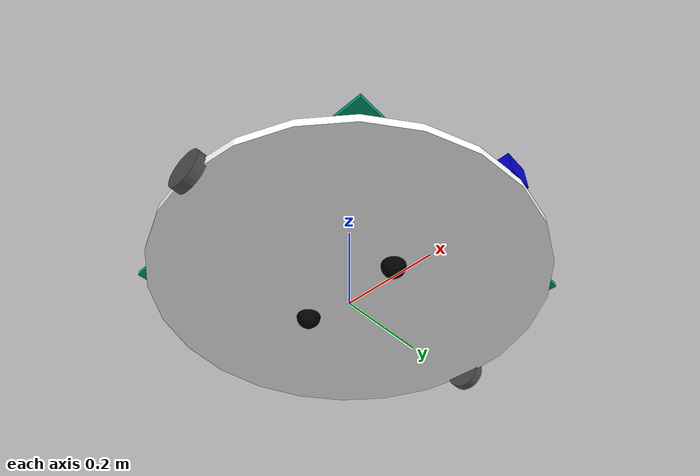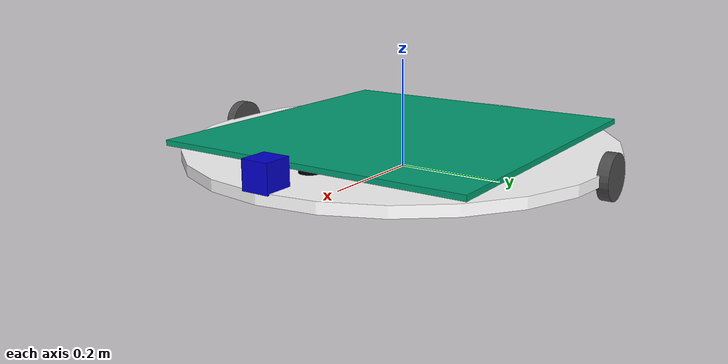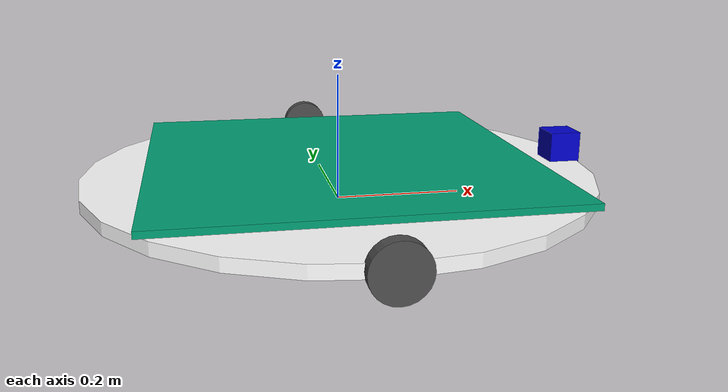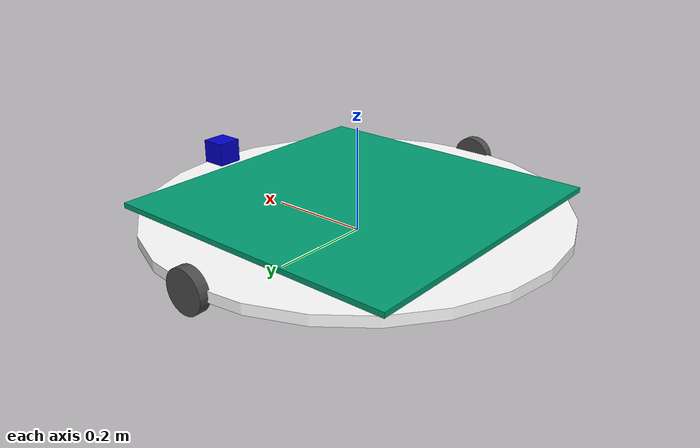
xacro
<?xml version="1.0"?>
<robot name="differential_wheeled_robot" xmlns:xacro="http://www.ros.org/wiki/xacro">

  <xacro:include filename="$(find prometheus_gazebo)/models/diff_robot/urdf/wheel.urdf.xacro" />

<!-- Defining the colors used in this robot -->
  <material name="Black">
    <color rgba="0.0 0.0 0.0 1.0"/>
  </material>

  <material name="Red">
    <color rgba="0.8 0.0 0.0 1.0"/>
  </material>

  <material name="White">
    <color rgba="1.0 1.0 1.0 1.0"/>
  </material>

  <material name="Blue">
    <color rgba="0.0 0.0 0.8 1.0"/>
  </material>

  <!-- xacro:PROPERTY LIST -->
  <!--All units in m-kg-s-radians unit system -->
  <xacro:property name="M_PI" value="3.1415926535897931" />
  <xacro:property name="M_PI_2" value="1.570796327" />
  <xacro:property name="DEG_TO_RAD" value="0.017453293" />

  <!-- Main body radius and height -->
  <!-- Main Body Cylinder base   -->
  <!-- root1 modifies -->
  <xacro:property name="base_height" value="0.02" />
  <!--xacro:property name="base_radius" value="0.15" /-->
  <xacro:property name="base_radius" value="0.4" />
  <xacro:property name="base_mass" value="5" /> <!-- in kg-->

  <!-- root1 adds support -->
    <!-- root1 changes for the experiments -->
    <!--xacro:property name="support_length" value="0.42" /-->
    <xacro:property name="support_length" value="0.01" />
    <xacro:property name="support_radius" value="0.02" />
    <xacro:property name="support_x" value="0.0" />
    <xacro:property name="support_y" value="0.0" />
    <xacro:property name="support_z" value="${base_height / 2 + support_length / 2}" />
    <xacro:property name="support_m" value="0.02" />

    <xacro:property name="support_x1" value="0.27" />
    <xacro:property name="support_y1" value="0.00" />
    <xacro:property name="support_x2" value="-0.135" />
    <xacro:property name="support_y2" value="-0.2338269" />
    <xacro:property name="support_x3" value="-0.135" />
    <xacro:property name="support_y3" value="0.2338269" />

  <!-- root1 adds landing pad -->
  <xacro:property name="pad_h" value="0.01" />
  <xacro:property name="pad_z" value="${support_length / 2 + pad_h / 2}" />

  <!-- caster wheel radius and height -->
  <!-- caster wheel mass -->
  <xacro:property name="caster_f_height" value="0.04" />
  <xacro:property name="caster_f_radius" value="0.025" />
  <xacro:property name="caster_f_mass" value="0.5" /> <!-- in kg-->

  <!-- caster wheel radius and height -->
  <!-- caster wheel mass -->
  <xacro:property name="caster_b_height" value="0.04" />
  <xacro:property name="caster_b_radius" value="0.025" />
  <xacro:property name="caster_b_mass" value="0.5" /> <!-- in kg-->

  <!-- Wheels -->

  <xacro:property name="wheel_mass" value="2.5" /> --> <!-- in kg-->

  <!-- root1 modifies -->
  <!--xacro:property name="base_x_origin_to_wheel_origin" value="0.25" /-->
  <!--xacro:property name="base_y_origin_to_wheel_origin" value="0.3" /-->
  <xacro:property name="base_x_origin_to_wheel_origin" value="0.8" />
  <xacro:property name="base_y_origin_to_wheel_origin" value="0.8" />
  <xacro:property name="base_z_origin_to_wheel_origin" value="0.0" />

  <!-- Hokuyo Laser scanner -->
  <xacro:property name="hokuyo_size" value="0.05" />

  <!-- Macro for calculating inertia of cylinder -->
  <xacro:macro name="cylinder_inertia" params="m r h">
    <inertia  ixx="${m*(3*r*r+h*h)/12}" ixy = "0" ixz = "0"
              iyy="${m*(3*r*r+h*h)/12}" iyz = "0"
              izz="${m*r*r/2}" />
  </xacro:macro>

  <!-- BASE-FOOTPRINT -->
  <!-- base_footprint is a fictitious link(frame) that is on the ground right below base_link origin -->
  <link name="base_footprint">
    <inertial>
      <mass value="0.0001" />
      <origin xyz="0 0 0" />
      <inertia ixx="0.0001" ixy="0.0" ixz="0.0"
          iyy="0.0001" iyz="0.0"
          izz="0.0001" />
    </inertial>
    <visual>
        <origin xyz="0 0 0" rpy="0 0 0" />
        <geometry>
            <box size="0.001 0.001 0.001" />
        </geometry>
    </visual>
  </link>

  <gazebo reference="base_footprint">
    <turnGravityOff>false</turnGravityOff>
  </gazebo>

  <joint name="base_footprint_joint" type="fixed">
    <origin xyz="0 0 ${wheel_radius - base_z_origin_to_wheel_origin}" rpy="0 0 0" />
    <parent link="base_footprint"/>
    <child link="base_link1" />
  </joint>

  <!-- BASE-LINK -->
  <!--Actual body/chassis of the robot-->
  <link name="base_link1">
    <inertial>
      <mass value="${base_mass}" />
      <origin xyz="0 0 0" />
      <!--The 3x3 rotational inertia matrix. -->
      <xacro:cylinder_inertia  m="${base_mass}" r="${base_radius}" h="${base_height}" />
      <inertia ixx="0.0001" ixy="0.0" ixz="0.0"
               iyy="0.0001" iyz="0.0"
               izz="0.0001" />
    </inertial>
    <visual>
      <origin xyz="0 0 0" rpy="0 0 0" />
      <geometry>
          <cylinder length="${base_height}" radius="${base_radius}" />
      </geometry>
      <material name="White" />
    </visual>
    <collision>
      <origin xyz="0 0 0" rpy="0 0 0 " />
      <geometry>
          <cylinder length="${base_height}" radius="${base_radius}" />
      </geometry>
    </collision>
  </link>
  <gazebo reference="base_link1">
    <material>Gazebo/White</material>
    <turnGravityOff>false</turnGravityOff>
  </gazebo>

<!--Caster front  -->
    <link name="caster_front_link">
    <visual>
      <origin xyz="0 0.02 0" rpy="${M_PI/2} 0 0" />
      <geometry>
	<sphere radius="${caster_f_radius}" />
      </geometry>
      <material name="Black" />
    </visual>
      <collision>
        <geometry>
	<sphere radius="${caster_f_radius}" />
        </geometry>
      <origin xyz="0 0.02 0" rpy="${M_PI/2} 0 0" />
      </collision>
      <inertial>
        <mass value="${caster_f_mass}" />
        <origin xyz="0 0 0" />
        <inertia ixx="0.001" ixy="0.0" ixz="0.0"
                 iyy="0.001" iyz="0.0"
                 izz="0.001" />
      </inertial>
    </link>

 <joint name="caster_front_joint" type="fixed">
      <parent link="base_link1"/>
      <child link="caster_front_link"/>
      <origin xyz="0.115 0.0 0.007" rpy="${-M_PI/2} 0 0"/>
    </joint>

  <gazebo reference="caster_front_link">
    <turnGravityOff>false</turnGravityOff>
  </gazebo>

<!--Caster back  -->

    <link name="caster_back_link">
    <visual>
      <origin xyz="0.02 0.02 0 " rpy="${M_PI/2} 0 0" />
      <geometry>
	<sphere radius="${caster_b_radius}" />
      </geometry>
      <material name="Black" />
    </visual>
      <collision>
        <geometry>
		<sphere radius="${caster_b_radius}" />
        </geometry>
      <origin xyz="0 0.02 0 " rpy="${M_PI/2} 0 0" />
      </collision>
      <inertial>
        <mass value="${caster_b_mass}" />
        <origin xyz="0 0 0" />
        <inertia ixx="0.001" ixy="0.0" ixz="0.0"
                 iyy="0.001" iyz="0.0"
                 izz="0.001" />
      </inertial>
    </link>

    <joint name="caster_back_joint" type="fixed">
      <parent link="base_link1"/>
      <child link="caster_back_link"/>
      <origin xyz="-0.135 0.0 0.009" rpy="${-M_PI/2} 0 0"/>
    </joint>

  <gazebo reference="caster_back_link">
    <turnGravityOff>false</turnGravityOff>
  </gazebo>

<!-- Wheel Definitions -->

  <xacro:wheel fb="front" lr="right" parent="base_link1" translateX="0" translateY="-0.5" flipY="-1"/>
  <xacro:wheel fb="front" lr="left" parent="base_link1" translateX="0" translateY="0.5" flipY="-1"/>

<!-- support link -->
<link name="support">
      <visual>
          <geometry>
              <cylinder radius="${support_radius}" length="${support_length}" />
          </geometry>
          <origin xyz="0.0 0.0 0.0" rpy="0.0 0.0 0.0" />
          <material name="white">
              <color rgba="1.0 1.0 1.0 0.1" />
          </material>
      </visual>

      <collision>
          <geometry>
              <cylinder radius="${support_radius}" length="${support_length}" />
          </geometry>
          <origin xyz="0.0 0.0 0.0" rpy="0.0 0.0 0.0" />
      </collision>

      <xacro:cylinder_inertia m="${support_m}" r="${support_radius}" h="${support_length}" />

  </link>

  <joint name="support_2_base_link" type="fixed">
      <parent link="base_link1" />
      <child link="support" />
      <origin xyz="${support_x} ${support_y} ${support_z}" />
  </joint>

  <gazebo reference="support">
      <material>Gazebo/White</material>
  </gazebo>

<!-- support link1 -->
<link name="support1">
      <visual>
          <geometry>
              <cylinder radius="${support_radius}" length="${support_length}" />
          </geometry>
          <origin xyz="0.0 0.0 0.0" rpy="0.0 0.0 0.0" />
          <material name="black">
              <color rgba="0.0 0.0 0.0 1.0" />
          </material>
      </visual>

      <collision>
          <geometry>
              <cylinder radius="${support_radius}" length="${support_length}" />
          </geometry>
          <origin xyz="0.0 0.0 0.0" rpy="0.0 0.0 0.0" />
      </collision>

      <xacro:cylinder_inertia m="${support_m}" r="${support_radius}" h="${support_length}" />

  </link>

  <joint name="support1_2_base_link" type="fixed">
      <parent link="base_link1" />
      <child link="support1" />
      <origin xyz="${support_x1} ${support_y1} ${support_z}" />
  </joint>

  <gazebo reference="support1">
      <material>Gazebo/Black</material>
  </gazebo>

  <!-- support link 2 -->
  <link name="support2">
      <visual>
          <geometry>
              <cylinder radius="${support_radius}" length="${support_length}" />
          </geometry>
          <origin xyz="0.0 0.0 0.0" rpy="0.0 0.0 0.0" />
          <material name="black">
              <color rgba="0.0 0.0 0.0 1.0" />
          </material>
      </visual>

      <collision>
          <geometry>
              <cylinder radius="${support_radius}" length="${support_length}" />
          </geometry>
          <origin xyz="0.0 0.0 0.0" rpy="0.0 0.0 0.0" />
      </collision>

      <xacro:cylinder_inertia m="${support_m}" r="${support_radius}" h="${support_length}" />

  </link>

  <joint name="support2_2_base_link" type="fixed">
      <parent link="base_link1" />
      <child link="support2" />
      <origin xyz="${support_x2} ${support_y2} ${support_z}" />
  </joint>

  <gazebo reference="support2">
      <material>Gazebo/Black</material>
  </gazebo>

  <!-- support link 3 -->
  <link name="support3">
      <visual>
          <geometry>
              <cylinder radius="${support_radius}" length="${support_length}" />
          </geometry>
          <origin xyz="0.0 0.0 0.0" rpy="0.0 0.0 0.0" />
          <material name="black">
              <color rgba="0.0 0.0 0.0 1.0" />
          </material>
      </visual>

      <collision>
          <geometry>
              <cylinder radius="${support_radius}" length="${support_length}" />
          </geometry>
          <origin xyz="0.0 0.0 0.0" rpy="0.0 0.0 0.0" />
      </collision>

      <xacro:cylinder_inertia m="${support_m}" r="${support_radius}" h="${support_length}" />

  </link>

  <joint name="support3_2_base_link" type="fixed">
      <parent link="base_link1" />
      <child link="support3" />
      <origin xyz="${support_x3} ${support_y3} ${support_z}" />
  </joint>

  <gazebo reference="support3">
      <material>Gazebo/Black</material>
  </gazebo>

  <!--landing pad bad version-->

    <link name="landing_pad_link">
      <visual>
          <geometry>
              <box size="0.6 0.6 ${pad_h}"/>
          </geometry>
          <origin xyz="0.0 0.0 0.0" rpy="0.0 0.0 0.0" />
      </visual>

    <collision>
       <geometry>
        <box size="0.6 0.6 ${pad_h}"/>
        <surface>
          <contact>
            <ode>
              <min_depth>0.001</min_depth>
              <max_vel>0</max_vel>
            </ode>
          </contact>
          <friction>
            <ode>
              <mu>150</mu>
              <mu2>150</mu2>
            </ode>
          </friction>
        </surface>
      </geometry>
      <origin xyz="0.0 0.0 0.0" rpy="0.0 0.0 0.0" />
   </collision>

      <inertial>
        <!--mass value="0.2" /-->
        <mass value="0.02" />
        <origin xyz = " 0 0 0.00" rpy="0.0 0.0 0.0" />
        <!--root1 modifies on 181023, delete the empty sapce for ixy -->
        <!--inertia ixx="0.001" ixy= "0.0" ixz = "0.0" iyy = "0.001" iyz = "0.0" izz = "0.001" /-->
        <inertia ixx="0.0006" ixy= "0.0" ixz = "0.0" iyy = "0.0006" iyz = "0.0" izz = "0.0144" />
      </inertial>
    </link>
    <gazebo reference = "landing_pad_link">
      <material>Cube/landing_pad</material>
      <mu1>150</mu1>
      <mu2>150</mu2>
    </gazebo>

    <joint name="pad_joint" type="fixed">
      <parent link="support"/>
      <child link="landing_pad_link"/>
      <origin xyz="${support_x} ${support_y} ${pad_z}" rpy="0 0 0" />
    </joint>

  <!-- SENSORS -->

  <!-- hokuyo -->

  <link name="hokuyo_link">
    <visual>
      <origin xyz="0 0 0" rpy="0 0 0" />
      <geometry>
        <box size="${hokuyo_size} ${hokuyo_size} ${hokuyo_size}"/>
      </geometry>
      <material name="Blue" />
    </visual>
  </link>
  <joint name="hokuyo_joint" type="fixed">
    <origin xyz="${base_radius - hokuyo_size/2} 0 ${base_height+hokuyo_size/4}" rpy="0 0 0" />
    <parent link="base_link1"/>
    <child link="hokuyo_link" />
  </joint>
  <gazebo reference="hokuyo_link">
    <material>Gazebo/Black</material>
    <turnGravityOff>false</turnGravityOff>
    <sensor type="ray" name="head_hokuyo_sensor">
      <pose>${hokuyo_size/2} 0 0 0 0 0</pose>
      <visualize>false</visualize>
      <update_rate>40</update_rate>
      <ray>
        <scan>
          <horizontal>
            <samples>720</samples>
            <resolution>1</resolution>
            <min_angle>-1.570796</min_angle>
            <max_angle>1.570796</max_angle>
          </horizontal>
        </scan>
        <range>
          <min>0.10</min>
          <max>10.0</max>
          <resolution>0.001</resolution>
        </range>
      </ray>
      <plugin name="gazebo_ros_head_hokuyo_controller" filename="libgazebo_ros_laser.so">
        <topicName>/scan</topicName>
        <frameName>hokuyo_link</frameName>
      </plugin>
    </sensor>
  </gazebo>

  <!-- Differential drive controller  -->
  <gazebo>
    <plugin name="differential_drive_controller" filename="libgazebo_ros_diff_drive.so">
      <rosDebugLevel>Debug</rosDebugLevel>
      <publishWheelTF>true</publishWheelTF>
      <robotNamespace>/</robotNamespace>
      <publishTf>true</publishTf>
      <publishWheelJointState>true</publishWheelJointState>
      <alwaysOn>true</alwaysOn>
      <updateRate>100.0</updateRate>
      <leftJoint>front_left_wheel_joint</leftJoint>
      <rightJoint>front_right_wheel_joint</rightJoint>
      <wheelSeparation>${2*base_radius}</wheelSeparation>
      <wheelDiameter>${2*wheel_radius}</wheelDiameter>
      <broadcastTF>true</broadcastTF>
      <wheelTorque>30</wheelTorque>
      <wheelAcceleration>1.8</wheelAcceleration>
      <commandTopic>/cmd_vel_diff</commandTopic>
      <odometryFrame>odom</odometryFrame>
      <odometryTopic>odom</odometryTopic>
      <robotBaseFrame>base_footprint</robotBaseFrame>
    </plugin>

    <plugin name="p3d_base_controller" filename="libgazebo_ros_p3d.so">
      <alwaysOn>true</alwaysOn>
      <updateRate>30.0</updateRate>
      <!-- root1 changes on 2510 -->
      <bodyName>landing_pad_link</bodyName>
      <topicName>ground_truth/diff</topicName>
      <gaussianNoise>0.00</gaussianNoise>
      <!-- root1 changes on 2510 -->
      <frameName>world</frameName>
      <xyzOffsets>0 0 0</xyzOffsets>
      <rpyOffsets>0 0 0</rpyOffsets>
    </plugin>

  </gazebo>

</robot>

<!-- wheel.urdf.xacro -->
<robot name="wheel" xmlns:xacro="http://www.ros.org/xacro">

  <!-- Wheels -->
  <xacro:property name="wheel_radius" value="0.04" />
  <xacro:property name="wheel_height" value="0.02" />
  <xacro:property name="wheel_mass" value="2.5" /> <!-- in kg-->

  <!-- root1 modifies -->
  <!--xacro:property name="base_x_origin_to_wheel_origin" value="0.25" /-->
  <!--xacro:property name="base_y_origin_to_wheel_origin" value="0.3" /-->
  <xacro:property name="base_x_origin_to_wheel_origin" value="0.8" />
  <xacro:property name="base_y_origin_to_wheel_origin" value="0.8" />
  <xacro:property name="base_z_origin_to_wheel_origin" value="0.0" />

  <xacro:macro name="cylinder_inertia" params="m r h">
    <inertia  ixx="${m*(3*r*r+h*h)/12}" ixy = "0" ixz = "0"
              iyy="${m*(3*r*r+h*h)/12}" iyz = "0"
              izz="${m*r*r/2}" />
  </xacro:macro>

  <xacro:macro name="wheel" params="fb lr parent translateX translateY flipY"> <!--fb : front, back ; lr: left, right -->
    <link name="${fb}_${lr}_wheel">
      <visual>
        <origin xyz="0 0 0" rpy="${flipY*M_PI/2} 0  0 " />
        <geometry>
          <cylinder length="${wheel_height}" radius="${wheel_radius}" />
        </geometry>
        <material name="DarkGray" />
      </visual>
      <collision>
        <origin xyz="0 0 0" rpy="${flipY*M_PI/2} 0 0 " />
        <geometry>
          <cylinder length="${wheel_height}" radius="${wheel_radius}" />
        </geometry>
      </collision>
      <inertial>
        <mass value="${wheel_mass}" />
        <origin xyz="0 0 0" />
        <xacro:cylinder_inertia  m="${wheel_mass}" r="${wheel_radius}" h="${wheel_height}" />
      </inertial>
    </link>

    <gazebo reference="${fb}_${lr}_wheel">
      <mu1 value="1.0"/>
      <mu2 value="1.0"/>
      <kp  value="10000000.0" />
      <kd  value="1.0" />
      <fdir1 value="1 0 0"/>
      <material>Gazebo/Grey</material>
      <turnGravityOff>false</turnGravityOff>
    </gazebo>

    <joint name="${fb}_${lr}_wheel_joint" type="continuous">
      <parent link="${parent}"/>
      <child link="${fb}_${lr}_wheel"/>
      <origin xyz="${translateX * base_x_origin_to_wheel_origin} ${translateY * base_y_origin_to_wheel_origin} ${base_z_origin_to_wheel_origin}" rpy="0 0 0" />
      <axis xyz="0 1 0" rpy="0  0" />
      <limit effort="100" velocity="100"/>
      <joint_properties damping="0.0" friction="0.0"/>
    </joint>

    <!-- Transmission is important to link the joints and the controller -->
    <transmission name="${fb}_${lr}_wheel_joint_trans">
      <type>transmission_interface/SimpleTransmission</type>
      <joint name="${fb}_${lr}_wheel_joint" />
      <actuator name="${fb}_${lr}_wheel_joint_motor">
        <hardwareInterface>EffortJointInterface</hardwareInterface>
        <mechanicalReduction>1</mechanicalReduction>
      </actuator>
    </transmission>

  </xacro:macro>
</robot>
